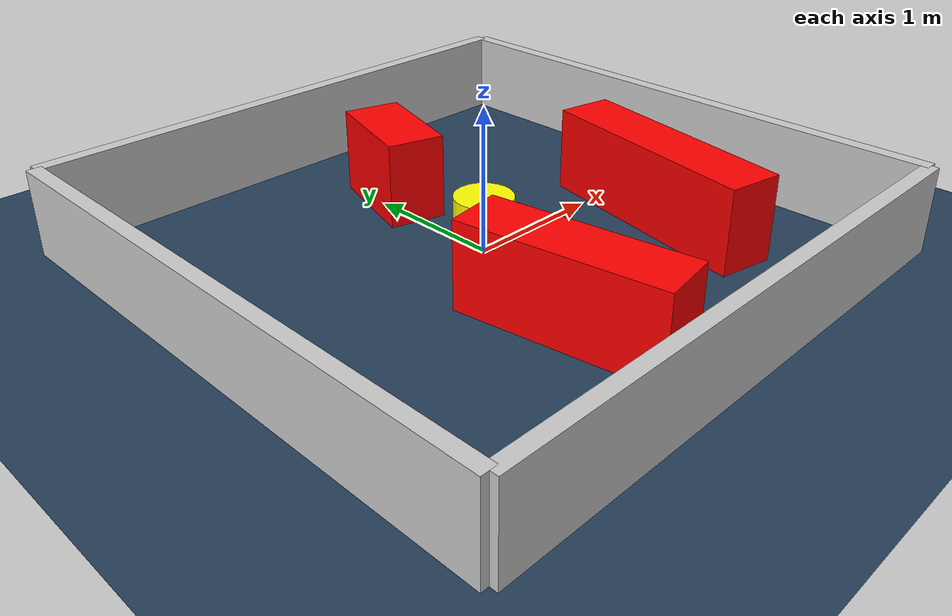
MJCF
<?xml version="1.0" ?>
<mujoco model="generated_environment">
  <option timestep="0.01" integrator="RK4" cone="elliptic"/>
  <default>
    <geom density="1"/>
  </default>
  <asset>
    <texture builtin="gradient" height="3072" rgb1="0.3 0.5 0.7" rgb2="0 0 0" type="skybox" width="512"/>
    <texture builtin="checker" height="300" mark="edge" markrgb="0.8 0.8 0.8" name="groundplane" rgb1="0.2 0.3 0.4" rgb2="0.1 0.2 0.3" type="2d" width="300"/>
    <material name="groundplane" reflectance="0.2" texrepeat="5 5" texture="groundplane" texuniform="true"/>
    <material name="robot" rgba="0.0 1.0 0.0 1"/>
  </asset>
  <worldbody>
    <light dir="0 0 -1" directional="true" pos="0 0 1.5"/>
    <geom condim="4" friction="1.0 0.005 0.001" material="groundplane" name="floor" size="0 0 0.05" type="plane"/>
    <body name="walls">
      <geom name="wall_1" condim="4" pos="-2.0 0.0 0.3" rgba="0.800000011920929 0.800000011920929 0.800000011920929 1.0" size="0.05 2.0 0.3" type="box"/>
      <geom name="wall_2" condim="4" pos="2.0 0.0 0.3" rgba="0.800000011920929 0.800000011920929 0.800000011920929 1.0" size="0.05 2.0 0.3" type="box"/>
      <geom name="wall_3" condim="4" pos="0.0 -2.0 0.3" rgba="0.800000011920929 0.800000011920929 0.800000011920929 1.0" size="2.0 0.05 0.3" type="box"/>
      <geom name="wall_4" condim="4" pos="0.0 2.0 0.3" rgba="0.800000011920929 0.800000011920929 0.800000011920929 1.0" size="2.0 0.05 0.3" type="box"/>
    </body>
    <body name="robot">
      <joint name="joint_x" type="slide" pos="0 0 0" axis="1 0 0"/>
      <joint name="joint_y" type="slide" pos="0 0 0" axis="0 1 0"/>
      <geom name="robot" type="sphere" pos="0.3 0.0 0.2" size="0.05" mass="5." friction="1.0 0.005 0.0001" condim="4" rgba="0.5 0.5 0.5 1.0"/>
      <site name="sensor_ball"/>
    </body>
    <body name="obstacle_movable_1">
      <geom name="obstacle_movable_1" condim="4" pos="0.0 0.0 0.2" euler="0 0 0.0" friction="1.0 0.005 0.001" rgba="1.0 1.0 0.0 1.0" size="0.2 0.2 0.0" type="cylinder" mass="0.1"/>
      <joint type="free"/>
    </body>
    <body name="obstacle_2_static">
      <geom name="obstacle_2_static" condim="4" pos="0.09138194779998665 0.9825805605892921 0.3" euler="0 0 73.60245745400908" friction="1.0 0.005 0.001" rgba="1 0 0 1" size="0.37564525733467746 0.2 0.3" type="box"/>
    </body>
    <body name="obstacle_3_static">
      <geom name="obstacle_3_static" condim="4" pos="-0.3458216659221437 -1.0351418201619382 0.3" euler="0 0 98.71325044539655" friction="1.0 0.005 0.001" rgba="1 0 0 1" size="0.6913411366898214 0.2 0.3" type="box"/>
    </body>
    <body name="obstacle_4_static">
      <geom name="obstacle_4_static" condim="4" pos="1.1607391664577547 -0.5385156155439619 0.3" euler="0 0 78.99483973556285" friction="1.0 0.005 0.001" rgba="1 0 0 1" size="0.8238627711091047 0.2 0.3" type="box"/>
    </body>
  </worldbody>
  <actuator>
    <motor name="actuator_x" joint="joint_x" gear="1" ctrlrange="-1 1"/>
    <motor name="actuator_y" joint="joint_y" gear="1" ctrlrange="-1 1"/>
  </actuator>
</mujoco>
